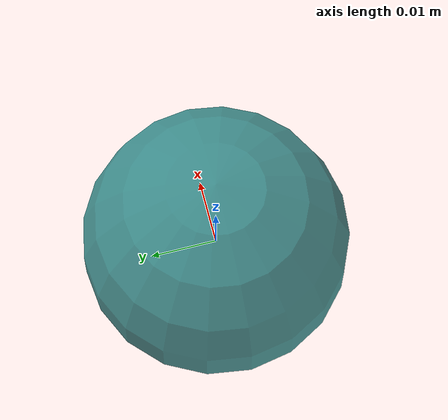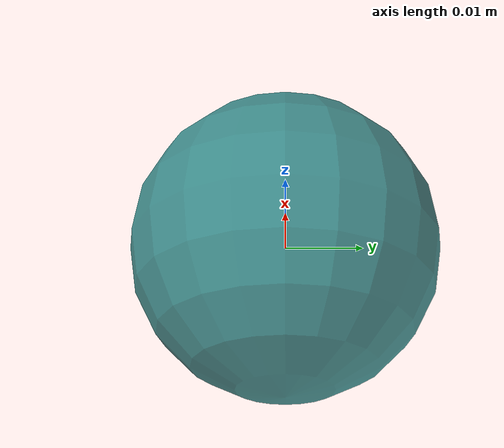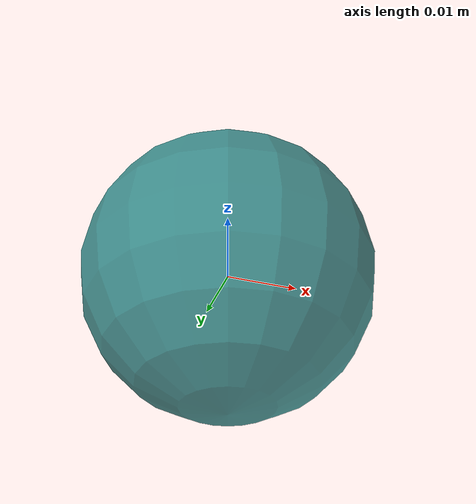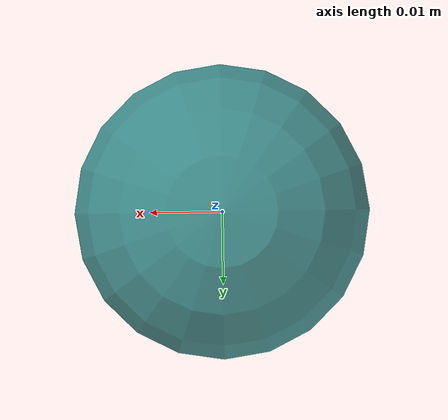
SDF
<?xml version="1.0"?>
<sdf version="1.7">
  <model name="pointed_fingertip">

    <!-- Create the virtual world link -->

    <link name="virtual_world">
      <inertial>
        <mass>1.0e-6</mass>
        <inertia>
          <ixx>1.0e-6</ixx>
          <ixy>0</ixy>
          <ixz>0</ixz>
          <iyy>1.0e-6</iyy>
          <iyz>0</iyz>
          <izz>1.0e-6</izz>
        </inertia>
      </inertial>
    </link>

    <!-- Create the fingertip 1/3  -->

    <link name="sphere_tip1">
      <inertial>
        <mass>1.0e-6</mass>
        <inertia>
          <ixx>1.0e-6</ixx>
          <ixy>0</ixy>
          <ixz>0</ixz>
          <iyy>1.0e-6</iyy>
          <iyz>0</iyz>
          <izz>1.0e-6</izz>
        </inertia>
      </inertial>

      <visual name="visual">
        <geometry>
          <sphere>
            <radius>0.02</radius>
          </sphere>
        </geometry>
        <material>
          <diffuse>0.1 0.5 0.5 0.8</diffuse>
        </material>
      </visual>

      <collision name="collision">
        <geometry>
          <sphere>
            <radius>0.02</radius>
          </sphere>
        </geometry>
        <surface>
          <friction>
            <ode>
              <mu>1.0</mu>
              <mu2>1.0</mu2>
            </ode>
          </friction>
        </surface>
      </collision>
    </link>

    <link name="ghost_body_x1">
      <inertial>
        <mass>1.0e-6</mass>
        <inertia>
          <ixx>1.0e-6</ixx>
          <ixy>0</ixy>
          <ixz>0</ixz>
          <iyy>1.0e-6</iyy>
          <iyz>0</iyz>
          <izz>1.0e-6</izz>
        </inertia>
      </inertial>
    </link>

    <link name="ghost_body_y1">
      <inertial>
        <mass>1.0e-6</mass>
        <inertia>
          <ixx>1.0e-6</ixx>
          <ixy>0</ixy>
          <ixz>0</ixz>
          <iyy>1.0e-6</iyy>
          <iyz>0</iyz>
          <izz>1.0e-6</izz>
        </inertia>
      </inertial>
    </link>

    <joint name="x_slider1" type="prismatic">
      <parent>virtual_world</parent>
      <child>ghost_body_x1</child>
      <axis>
        <xyz>1 0 0</xyz>
      </axis>
    </joint>

    <joint name="y_slider1" type="prismatic">
      <parent>virtual_world</parent>
      <child>ghost_body_y1</child>
      <axis>
        <xyz>0 1 0</xyz>
      </axis>
    </joint>

    <joint name="z_slider1" type="prismatic">
      <parent>virtual_world</parent>
      <child>sphere_tip1</child>
      <axis>
        <xyz>0 0 1</xyz>
      </axis>
    </joint>

    <!-- Create the fingertip 2/3 -->

    <link name="sphere_tip2">
      <inertial>
        <mass>1.0e-6</mass>
        <inertia>
          <ixx>1.0e-6</ixx>
          <ixy>0</ixy>
          <ixz>0</ixz>
          <iyy>1.0e-6</iyy>
          <iyz>0</iyz>
          <izz>1.0e-6</izz>
        </inertia>
      </inertial>

      <visual name="visual">
        <geometry>
          <sphere>
            <radius>0.02</radius>
          </sphere>
        </geometry>
        <material>
          <diffuse>0.1 0.5 0.5 0.8</diffuse>
        </material>
      </visual>

      <collision name="collision">
        <geometry>
          <sphere>
            <radius>0.02</radius>
          </sphere>
        </geometry>
        <surface>
          <friction>
            <ode>
              <mu>1.0</mu>
              <mu2>1.0</mu2>
            </ode>
          </friction>
        </surface>
      </collision>
    </link>

    <link name="ghost_body_x2">
      <inertial>
        <mass>1.0e-6</mass>
        <inertia>
          <ixx>1.0e-6</ixx>
          <ixy>0</ixy>
          <ixz>0</ixz>
          <iyy>1.0e-6</iyy>
          <iyz>0</iyz>
          <izz>1.0e-6</izz>
        </inertia>
      </inertial>
    </link>

    <link name="ghost_body_y2">
      <inertial>
        <mass>1.0e-6</mass>
        <inertia>
          <ixx>1.0e-6</ixx>
          <ixy>0</ixy>
          <ixz>0</ixz>
          <iyy>1.0e-6</iyy>
          <iyz>0</iyz>
          <izz>1.0e-6</izz>
        </inertia>
      </inertial>
    </link>

    <joint name="x_slider2" type="prismatic">
      <parent>virtual_world</parent>
      <child>ghost_body_x2</child>
      <axis>
        <xyz>1 0 0</xyz>
      </axis>
    </joint>

    <joint name="y_slider2" type="prismatic">
      <parent>virtual_world</parent>
      <child>ghost_body_y2</child>
      <axis>
        <xyz>0 1 0</xyz>
      </axis>
    </joint>

    <joint name="z_slider2" type="prismatic">
      <parent>virtual_world</parent>
      <child>sphere_tip2</child>
      <axis>
        <xyz>0 0 1</xyz>
      </axis>
    </joint>

    <!-- Create the fingertip 3/3 -->

    <link name="sphere_tip3">
      <inertial>
        <mass>1.0e-6</mass>
        <inertia>
          <ixx>1.0e-6</ixx>
          <ixy>0</ixy>
          <ixz>0</ixz>
          <iyy>1.0e-6</iyy>
          <iyz>0</iyz>
          <izz>1.0e-6</izz>
        </inertia>
      </inertial>

      <visual name="visual">
        <geometry>
          <sphere>
            <radius>0.02</radius>
          </sphere>
        </geometry>
        <material>
          <diffuse>0.1 0.5 0.5 0.8</diffuse>
        </material>
      </visual>

      <collision name="collision">
        <geometry>
          <sphere>
            <radius>0.02</radius>
          </sphere>
        </geometry>
        <surface>
          <friction>
            <ode>
              <mu>1.0</mu>
              <mu2>1.0</mu2>
            </ode>
          </friction>
        </surface>
      </collision>
    </link>

    <link name="ghost_body_x3">
      <inertial>
        <mass>1.0e-6</mass>
        <inertia>
          <ixx>1.0e-6</ixx>
          <ixy>0</ixy>
          <ixz>0</ixz>
          <iyy>1.0e-6</iyy>
          <iyz>0</iyz>
          <izz>1.0e-6</izz>
        </inertia>
      </inertial>
    </link>

    <link name="ghost_body_y3">
      <inertial>
        <mass>1.0e-6</mass>
        <inertia>
          <ixx>1.0e-6</ixx>
          <ixy>0</ixy>
          <ixz>0</ixz>
          <iyy>1.0e-6</iyy>
          <iyz>0</iyz>
          <izz>1.0e-6</izz>
        </inertia>
      </inertial>
    </link>

    <joint name="x_slider3" type="prismatic">
      <parent>virtual_world</parent>
      <child>ghost_body_x3</child>
      <axis>
        <xyz>1 0 0</xyz>
      </axis>
    </joint>

    <joint name="y_slider3" type="prismatic">
      <parent>virtual_world</parent>
      <child>ghost_body_y3</child>
      <axis>
        <xyz>0 1 0</xyz>
      </axis>
    </joint>

    <joint name="z_slider3" type="prismatic">
      <parent>virtual_world</parent>
      <child>sphere_tip3</child>
      <axis>
        <xyz>0 0 1</xyz>
      </axis>
    </joint>

  </model>
</sdf>
